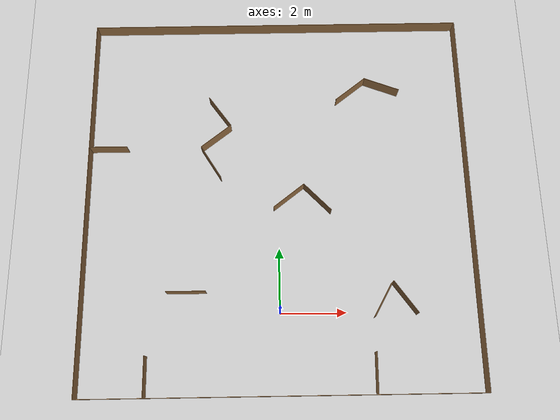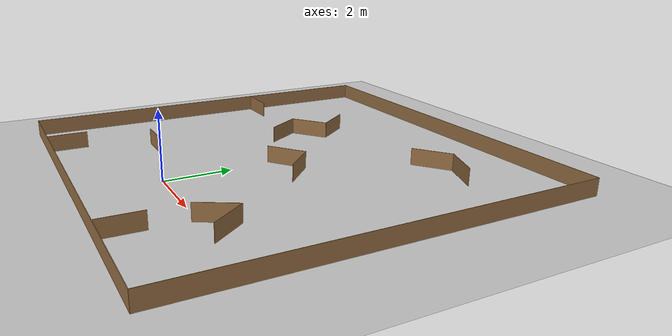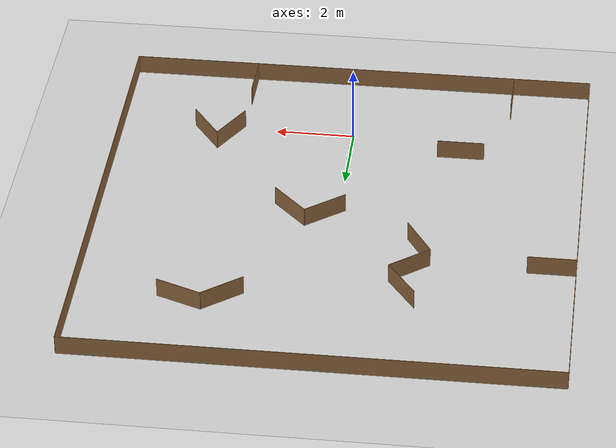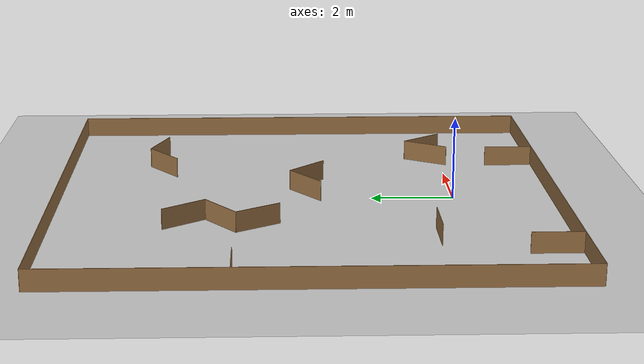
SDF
<sdf version="1.6">
 <world name="default">
  <scene><ambient>0.5 0.5 0.5 1</ambient><shadows>0</shadows><background>0.7 0.7 0.7 1</background></scene>
  <model name="ground_plane">
   <static>1</static>
   <link name="link">
    <collision name="collision">
     <geometry><plane><normal>0 0 1</normal><size>100 100</size></plane></geometry>
     <surface><friction><ode><mu>100</mu><mu2>50</mu2></ode></friction></surface>
    </collision>
    <visual name="visual">
     <cast_shadows>0</cast_shadows>
     <geometry><plane><normal>0 0 1</normal><size>100 100</size></plane></geometry>
     <material>
      <script><uri>file://media/materials/scripts/gazebo.material</uri><name>Gazebo/Grey</name></script>
     </material>
    </visual>
   </link>
  </model>
  <light name="sun" type="directional">
   <pose>0 0 10 0 -0 0</pose>
   <diffuse>0.8 0.8 0.8 1</diffuse>
   <specular>0.1 0.1 0.1 1</specular>
   <attenuation>
    <range>1000</range>
    <constant>0.9</constant>
    <linear>0.01</linear>
    <quadratic>0.001</quadratic>
   </attenuation>
   <direction>-0.5 0.5 -1</direction>
  </light>
  <gravity>0 0 -9.8</gravity>
  <magnetic_field>6e-06 2.3e-05 -4.2e-05</magnetic_field>
  <atmosphere type="adiabatic"/>
  <physics name="default_physics" default="0" type="ode">
   <max_step_size>0.001</max_step_size>
   <real_time_factor>1</real_time_factor>
   <real_time_update_rate>1000</real_time_update_rate>
  </physics>
  <scene><ambient>0.4 0.4 0.4 1</ambient><background>0.7 0.7 0.7 1</background><shadows>1</shadows></scene>
  <spherical_coordinates>
   <surface_model>EARTH_WGS84</surface_model>
   <latitude_deg>0</latitude_deg>
   <longitude_deg>0</longitude_deg>
   <elevation>0</elevation>
   <heading_deg>0</heading_deg>
  </spherical_coordinates>
  <model name="papptown_wall">
   <pose>3.12783 0.359306 0 0 0 -0.517785</pose>
   <static>1</static>
   <link name="link">
    <pose>0 0 0.25 0 -0 0</pose>
    <collision name="collision"><geometry><box><size>0.015 1.2 0.5</size></box></geometry></collision>
    <visual name="visual">
     <geometry><box><size>0.015 1.2 0.5</size></box></geometry>
     <material>
      <ambient>0.5 0.5 0.5 1</ambient>
      <diffuse>0.57 0.417 0.25 1</diffuse>
      <specular>0.1 0.1 0.1 1</specular>
      <emissive>0 0 0 0</emissive>
     </material>
    </visual>
   </link>
  </model>
  <model name="cardboard_wall_6">
   <pose>-2.12035 4.76189 0 0 -0 0.554355</pose>
   <static>1</static>
   <link name="link">
    <pose>0 0 0.25 0 -0 0</pose>
    <collision name="collision"><geometry><box><size>0.015 1.2 0.5</size></box></geometry></collision>
    <visual name="visual">
     <geometry><box><size>0.015 1.2 0.5</size></box></geometry>
     <material>
      <ambient>0.5 0.5 0.5 1</ambient>
      <diffuse>0.57 0.417 0.25 1</diffuse>
      <specular>0.1 0.1 0.1 1</specular>
      <emissive>0 0 0 0</emissive>
     </material>
    </visual>
   </link>
  </model>
  <model name="cardboard_wall_10">
   <pose>-1.96575 5.63251 0 0 0 -0.913867</pose>
   <static>1</static>
   <link name="link">
    <pose>0 0 0.25 0 -0 0</pose>
    <collision name="collision"><geometry><box><size>0.015 1.2 0.5</size></box></geometry></collision>
    <visual name="visual">
     <geometry><box><size>0.015 1.2 0.5</size></box></geometry>
     <material>
      <ambient>0.5 0.5 0.5 1</ambient>
      <diffuse>0.57 0.417 0.25 1</diffuse>
      <specular>0.1 0.1 0.1 1</specular>
      <emissive>0 0 0 0</emissive>
     </material>
    </visual>
   </link>
  </model>
  <model name="cardboard_wall_13">
   <pose>-2.8342 0.659029 0 0 -0 1.5708</pose>
   <static>1</static>
   <link name="link">
    <pose>0 0 0.25 0 -0 0</pose>
    <collision name="collision"><geometry><box><size>0.015 1.2 0.5</size></box></geometry></collision>
    <visual name="visual">
     <geometry><box><size>0.015 1.2 0.5</size></box></geometry>
     <material>
      <ambient>0.5 0.5 0.5 1</ambient>
      <diffuse>0.57 0.417 0.25 1</diffuse>
      <specular>0.1 0.1 0.1 1</specular>
      <emissive>0 0 0 0</emissive>
     </material>
    </visual>
   </link>
  </model>
  <model name="cardboard_wall_15">
   <pose>3.77505 0.396951 0 0 -0 0.625266</pose>
   <static>1</static>
   <link name="link">
    <pose>0 0 0.25 0 -0 0</pose>
    <collision name="collision"><geometry><box><size>0.015 1.2 0.5</size></box></geometry></collision>
    <visual name="visual">
     <geometry><box><size>0.015 1.2 0.5</size></box></geometry>
     <material>
      <ambient>0.5 0.5 0.5 1</ambient>
      <diffuse>0.57 0.417 0.25 1</diffuse>
      <specular>0.1 0.1 0.1 1</specular>
      <emissive>0 0 0 0</emissive>
     </material>
    </visual>
   </link>
  </model>
  <model name="fence">
   <link name="cardboard_wall::link">
    <pose>0 3.6 0.25 0 -0 0</pose>
    <inertial>
     <mass>1</mass>
     <inertia><ixx>1</ixx><ixy>0</ixy><ixz>0</ixz><iyy>1</iyy><iyz>0</iyz><izz>1</izz></inertia>
    </inertial>
    <visual name="visual">
     <geometry><box><size>0.015 12 0.5</size></box></geometry>
     <material>
      <ambient>0.5 0.5 0.5 1</ambient>
      <diffuse>0.57 0.417 0.25 1</diffuse>
      <specular>0.1 0.1 0.1 1</specular>
      <emissive>0 0 0 1</emissive>
      <script><name>ModelPreview_1::cardboard_wall::link::visual_MATERIAL_</name><uri>__default__</uri></script>
      <shader type="vertex"><normal_map>__default__</normal_map></shader>
     </material>
    </visual>
    <collision name="collision">
     <geometry><box><size>0.015 12 0.5</size></box></geometry>
     <surface>
      <friction>
       <ode><mu>1</mu><mu2>1</mu2><fdir1>0 0 0</fdir1><slip1>0</slip1><slip2>0</slip2></ode>
       <torsional>
        <coefficient>1</coefficient>
        <patch_radius>0</patch_radius>
        <surface_radius>0</surface_radius>
        <use_patch_radius>1</use_patch_radius>
        <ode><slip>0</slip></ode>
       </torsional>
      </friction>
      <bounce><restitution_coefficient>0</restitution_coefficient><threshold>1e+06</threshold></bounce>
      <contact>
       <collide_without_contact>0</collide_without_contact>
       <collide_without_contact_bitmask>1</collide_without_contact_bitmask>
       <collide_bitmask>1</collide_bitmask>
       <ode>
        <soft_cfm>0</soft_cfm>
        <soft_erp>0.2</soft_erp>
        <kp>1e+13</kp>
        <kd>1</kd>
        <max_vel>0.01</max_vel>
        <min_depth>0</min_depth>
       </ode>
       <bullet>
        <split_impulse>1</split_impulse>
        <split_impulse_penetration_threshold>-0.01</split_impulse_penetration_threshold>
        <soft_cfm>0</soft_cfm>
        <soft_erp>0.2</soft_erp>
        <kp>1e+13</kp>
        <kd>1</kd>
       </bullet>
      </contact>
     </surface>
    </collision>
   </link>
   <link name="link_clone">
    <pose>12 3.6 0.25 0 -0 0</pose>
    <inertial>
     <mass>1</mass>
     <inertia><ixx>1</ixx><ixy>0</ixy><ixz>0</ixz><iyy>1</iyy><iyz>0</iyz><izz>1</izz></inertia>
    </inertial>
    <visual name="visual">
     <geometry><box><size>0.015 12 0.5</size></box></geometry>
     <material>
      <ambient>0.5 0.5 0.5 1</ambient>
      <diffuse>0.57 0.417 0.25 1</diffuse>
      <specular>0.1 0.1 0.1 1</specular>
      <emissive>0 0 0 1</emissive>
      <script><name>ModelPreview_1::cardboard_wall::link::visual_MATERIAL_</name><uri>__default__</uri></script>
      <shader type="vertex"><normal_map>__default__</normal_map></shader>
     </material>
    </visual>
    <collision name="collision">
     <geometry><box><size>0.015 12 0.5</size></box></geometry>
     <surface>
      <friction>
       <ode><mu>1</mu><mu2>1</mu2><fdir1>0 0 0</fdir1><slip1>0</slip1><slip2>0</slip2></ode>
       <torsional>
        <coefficient>1</coefficient>
        <patch_radius>0</patch_radius>
        <surface_radius>0</surface_radius>
        <use_patch_radius>1</use_patch_radius>
        <ode><slip>0</slip></ode>
       </torsional>
      </friction>
      <bounce><restitution_coefficient>0</restitution_coefficient><threshold>1e+06</threshold></bounce>
      <contact>
       <collide_without_contact>0</collide_without_contact>
       <collide_without_contact_bitmask>1</collide_without_contact_bitmask>
       <collide_bitmask>1</collide_bitmask>
       <ode>
        <soft_cfm>0</soft_cfm>
        <soft_erp>0.2</soft_erp>
        <kp>1e+13</kp>
        <kd>1</kd>
        <max_vel>0.01</max_vel>
        <min_depth>0</min_depth>
       </ode>
       <bullet>
        <split_impulse>1</split_impulse>
        <split_impulse_penetration_threshold>-0.01</split_impulse_penetration_threshold>
        <soft_cfm>0</soft_cfm>
        <soft_erp>0.2</soft_erp>
        <kp>1e+13</kp>
        <kd>1</kd>
       </bullet>
      </contact>
     </surface>
    </collision>
   </link>
   <link name="link_clone_0">
    <pose>6 9.6 0.25 0 -0 1.571</pose>
    <inertial>
     <mass>1</mass>
     <inertia><ixx>1</ixx><ixy>0</ixy><ixz>0</ixz><iyy>1</iyy><iyz>0</iyz><izz>1</izz></inertia>
    </inertial>
    <visual name="visual">
     <geometry><box><size>0.015 12 0.5</size></box></geometry>
     <material>
      <ambient>0.5 0.5 0.5 1</ambient>
      <diffuse>0.57 0.417 0.25 1</diffuse>
      <specular>0.1 0.1 0.1 1</specular>
      <emissive>0 0 0 1</emissive>
      <script><name>ModelPreview_1::cardboard_wall::link::visual_MATERIAL_</name><uri>__default__</uri></script>
      <shader type="vertex"><normal_map>__default__</normal_map></shader>
     </material>
    </visual>
    <collision name="collision">
     <geometry><box><size>0.015 12 0.5</size></box></geometry>
     <surface>
      <friction>
       <ode><mu>1</mu><mu2>1</mu2><fdir1>0 0 0</fdir1><slip1>0</slip1><slip2>0</slip2></ode>
       <torsional>
        <coefficient>1</coefficient>
        <patch_radius>0</patch_radius>
        <surface_radius>0</surface_radius>
        <use_patch_radius>1</use_patch_radius>
        <ode><slip>0</slip></ode>
       </torsional>
      </friction>
      <bounce><restitution_coefficient>0</restitution_coefficient><threshold>1e+06</threshold></bounce>
      <contact>
       <collide_without_contact>0</collide_without_contact>
       <collide_without_contact_bitmask>1</collide_without_contact_bitmask>
       <collide_bitmask>1</collide_bitmask>
       <ode>
        <soft_cfm>0</soft_cfm>
        <soft_erp>0.2</soft_erp>
        <kp>1e+13</kp>
        <kd>1</kd>
        <max_vel>0.01</max_vel>
        <min_depth>0</min_depth>
       </ode>
       <bullet>
        <split_impulse>1</split_impulse>
        <split_impulse_penetration_threshold>-0.01</split_impulse_penetration_threshold>
        <soft_cfm>0</soft_cfm>
        <soft_erp>0.2</soft_erp>
        <kp>1e+13</kp>
        <kd>1</kd>
       </bullet>
      </contact>
     </surface>
    </collision>
   </link>
   <link name="link_clone_1">
    <pose>6 -2.4 0.25 0 -0 1.571</pose>
    <inertial>
     <mass>1</mass>
     <inertia><ixx>1</ixx><ixy>0</ixy><ixz>0</ixz><iyy>1</iyy><iyz>0</iyz><izz>1</izz></inertia>
    </inertial>
    <visual name="visual">
     <geometry><box><size>0.015 12 0.5</size></box></geometry>
     <material>
      <ambient>0.5 0.5 0.5 1</ambient>
      <diffuse>0.57 0.417 0.25 1</diffuse>
      <specular>0.1 0.1 0.1 1</specular>
      <emissive>0 0 0 1</emissive>
      <script><name>ModelPreview_1::cardboard_wall::link::visual_MATERIAL_</name><uri>__default__</uri></script>
      <shader type="vertex"><normal_map>__default__</normal_map></shader>
     </material>
    </visual>
    <collision name="collision">
     <geometry><box><size>0.015 12 0.5</size></box></geometry>
     <surface>
      <friction>
       <ode><mu>1</mu><mu2>1</mu2><fdir1>0 0 0</fdir1><slip1>0</slip1><slip2>0</slip2></ode>
       <torsional>
        <coefficient>1</coefficient>
        <patch_radius>0</patch_radius>
        <surface_radius>0</surface_radius>
        <use_patch_radius>1</use_patch_radius>
        <ode><slip>0</slip></ode>
       </torsional>
      </friction>
      <bounce><restitution_coefficient>0</restitution_coefficient><threshold>1e+06</threshold></bounce>
      <contact>
       <collide_without_contact>0</collide_without_contact>
       <collide_without_contact_bitmask>1</collide_without_contact_bitmask>
       <collide_bitmask>1</collide_bitmask>
       <ode>
        <soft_cfm>0</soft_cfm>
        <soft_erp>0.2</soft_erp>
        <kp>1e+13</kp>
        <kd>1</kd>
        <max_vel>0.01</max_vel>
        <min_depth>0</min_depth>
       </ode>
       <bullet>
        <split_impulse>1</split_impulse>
        <split_impulse_penetration_threshold>-0.01</split_impulse_penetration_threshold>
        <soft_cfm>0</soft_cfm>
        <soft_erp>0.2</soft_erp>
        <kp>1e+13</kp>
        <kd>1</kd>
       </bullet>
      </contact>
     </surface>
    </collision>
   </link>
   <static>1</static>
   <pose>-6 0 0 0 -0 0</pose>
  </model>
  <physics name="default_physics" default="0" type="ode">
   <max_step_size>0.005</max_step_size>
   <real_time_factor>1</real_time_factor>
   <real_time_update_rate>100</real_time_update_rate>
  </physics>
  <audio><device>default</device></audio>
  <model name="wall_1_clone">
   <pose>2.79776 -1.77775 0 0 0 -0.015752</pose>
   <static>1</static>
   <link name="cardboard_wall::link">
    <pose>0 0 0.25 0 -0 0</pose>
    <collision name="collision"><geometry><box><size>0.015 1.2 0.5</size></box></geometry></collision>
    <visual name="visual">
     <geometry><box><size>0.015 1.2 0.5</size></box></geometry>
     <material>
      <ambient>0.5 0.5 0.5 1</ambient>
      <diffuse>0.57 0.417 0.25 1</diffuse>
      <specular>0.1 0.1 0.1 1</specular>
      <emissive>0 0 0 0</emissive>
     </material>
    </visual>
   </link>
  </model>
  <model name="cardboard_wall_6_clone">
   <pose>3.42557 7.3735 0 0 -0 1.20901</pose>
   <static>1</static>
   <link name="link">
    <pose>0 0 0.25 0 -0 0</pose>
    <collision name="collision"><geometry><box><size>0.015 1.2 0.5</size></box></geometry></collision>
    <visual name="visual">
     <geometry><box><size>0.015 1.2 0.5</size></box></geometry>
     <material>
      <ambient>0.5 0.5 0.5 1</ambient>
      <diffuse>0.57 0.417 0.25 1</diffuse>
      <specular>0.1 0.1 0.1 1</specular>
      <emissive>0 0 0 0</emissive>
     </material>
    </visual>
   </link>
  </model>
  <model name="cardboard_wall_6_clone_0">
   <pose>1.21551 3.54993 0 0 -0 0.773422</pose>
   <static>1</static>
   <link name="link">
    <pose>0 0 0.25 0 -0 0</pose>
    <collision name="collision"><geometry><box><size>0.015 1.2 0.5</size></box></geometry></collision>
    <visual name="visual">
     <geometry><box><size>0.015 1.2 0.5</size></box></geometry>
     <material>
      <ambient>0.5 0.5 0.5 1</ambient>
      <diffuse>0.57 0.417 0.25 1</diffuse>
      <specular>0.1 0.1 0.1 1</specular>
      <emissive>0 0 0 0</emissive>
     </material>
    </visual>
   </link>
  </model>
  <model name="cardboard_wall_13_clone">
   <pose>-5.3994 5.30911 0 0 -0 1.5708</pose>
   <static>1</static>
   <link name="link">
    <pose>0 0 0.25 0 -0 0</pose>
    <collision name="collision"><geometry><box><size>0.015 1.2 0.5</size></box></geometry></collision>
    <visual name="visual">
     <geometry><box><size>0.015 1.2 0.5</size></box></geometry>
     <material>
      <ambient>0.5 0.5 0.5 1</ambient>
      <diffuse>0.57 0.417 0.25 1</diffuse>
      <specular>0.1 0.1 0.1 1</specular>
      <emissive>0 0 0 0</emissive>
     </material>
    </visual>
   </link>
  </model>
  <model name="cardboard_wall_6_clone_2">
   <pose>-1.84581 6.48716 0 0 -0 0.624618</pose>
   <static>1</static>
   <link name="link">
    <pose>0 0 0.25 0 -0 0</pose>
    <collision name="collision"><geometry><box><size>0.015 1.2 0.5</size></box></geometry></collision>
    <visual name="visual">
     <geometry><box><size>0.015 1.2 0.5</size></box></geometry>
     <material>
      <ambient>0.5 0.5 0.5 1</ambient>
      <diffuse>0.57 0.417 0.25 1</diffuse>
      <specular>0.1 0.1 0.1 1</specular>
      <emissive>0 0 0 0</emissive>
     </material>
    </visual>
   </link>
  </model>
  <model name="cardboard_wall_15_clone">
   <pose>-4.0003 -1.8024 0 0 -0 0</pose>
   <static>1</static>
   <link name="link">
    <pose>0 0 0.25 0 -0 0</pose>
    <collision name="collision"><geometry><box><size>0.015 1.2 0.5</size></box></geometry></collision>
    <visual name="visual">
     <geometry><box><size>0.015 1.2 0.5</size></box></geometry>
     <material>
      <ambient>0.5 0.5 0.5 1</ambient>
      <diffuse>0.57 0.417 0.25 1</diffuse>
      <specular>0.1 0.1 0.1 1</specular>
      <emissive>0 0 0 0</emissive>
     </material>
    </visual>
   </link>
  </model>
  <model name="cardboard_wall_10_clone">
   <pose>0.321563 3.60616 0 0 0 -0.913867</pose>
   <static>1</static>
   <link name="link">
    <pose>0 0 0.25 0 -0 0</pose>
    <collision name="collision"><geometry><box><size>0.015 1.2 0.5</size></box></geometry></collision>
    <visual name="visual">
     <geometry><box><size>0.015 1.2 0.5</size></box></geometry>
     <material>
      <ambient>0.5 0.5 0.5 1</ambient>
      <diffuse>0.57 0.417 0.25 1</diffuse>
      <specular>0.1 0.1 0.1 1</specular>
      <emissive>0 0 0 0</emissive>
     </material>
    </visual>
   </link>
  </model>
  <model name="cardboard_wall_10_clone_0">
   <pose>2.39948 7.21434 0 0 0 -0.913867</pose>
   <static>1</static>
   <link name="link">
    <pose>0 0 0.25 0 -0 0</pose>
    <collision name="collision"><geometry><box><size>0.015 1.2 0.5</size></box></geometry></collision>
    <visual name="visual">
     <geometry><box><size>0.015 1.2 0.5</size></box></geometry>
     <material>
      <ambient>0.5 0.5 0.5 1</ambient>
      <diffuse>0.57 0.417 0.25 1</diffuse>
      <specular>0.1 0.1 0.1 1</specular>
      <emissive>0 0 0 0</emissive>
     </material>
    </visual>
   </link>
  </model>
 </world>
</sdf>
